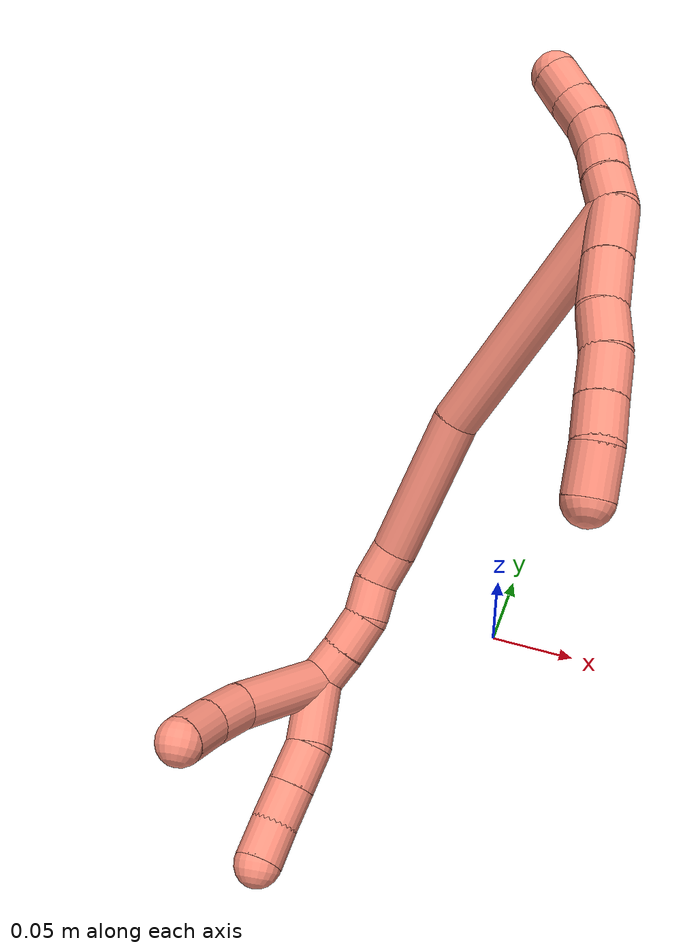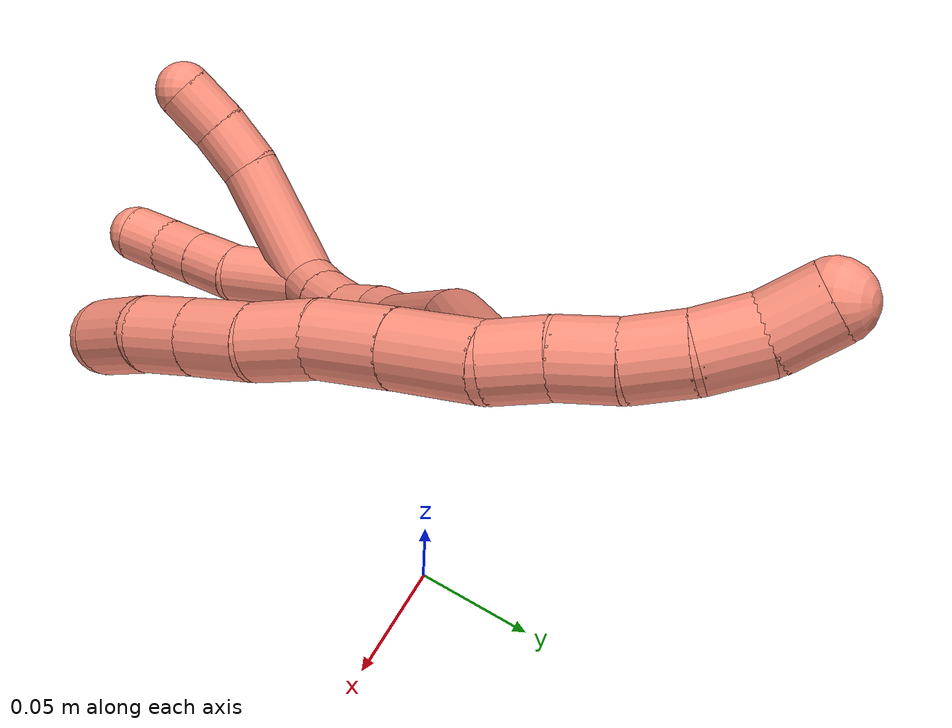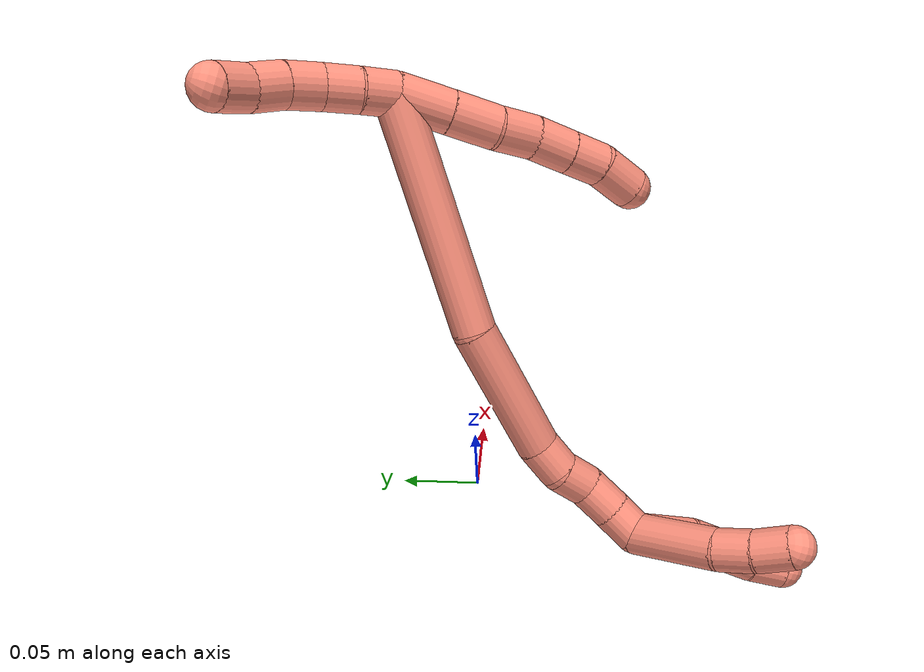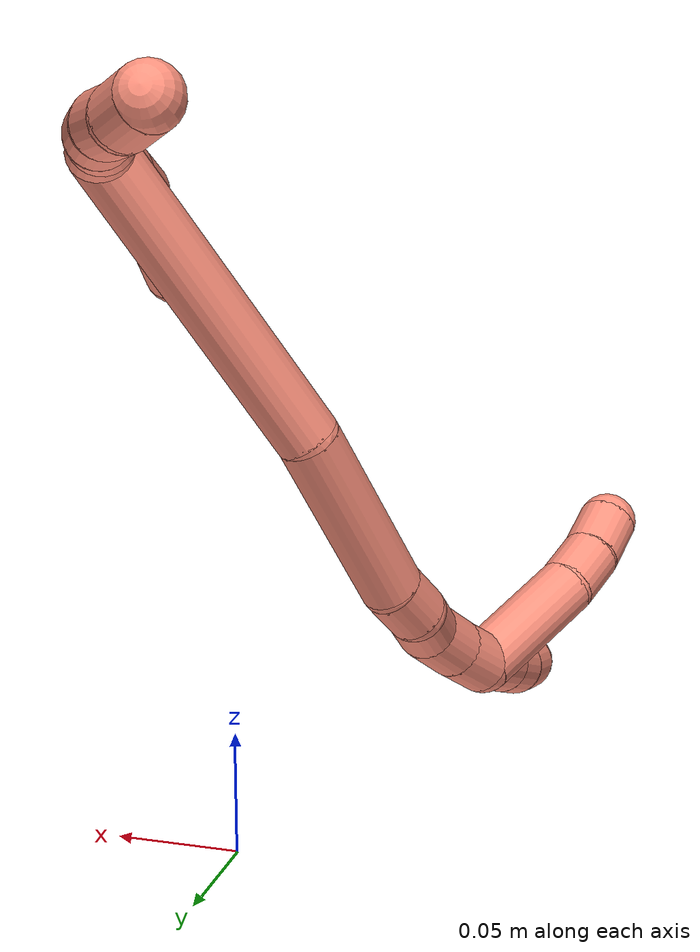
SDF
<sdf version="1.7">
 <world name="default">
  <model name="16">
   <static>0</static>
   <link name="16">
    <collision name="collision-cylinder-e_1_2_8">
     <pose>0.00036 -0.000911 -0.015291 3.08207 0.023467 0.750971</pose>
     <geometry><cylinder><radius>0.0125</radius><length>0.030644</length></cylinder></geometry>
     <surface>
      <friction><ode><mu>1.16</mu><mu2>1.16</mu2><slip1>0</slip1><slip2>0</slip2></ode></friction>
      <contact><ode><kp>1e+06</kp><kd>1</kd><max_vel>0</max_vel><min_depth>0.001</min_depth></ode></contact>
     </surface>
    </collision>
    <visual name="visual-cylinder-e_1_2_8">
     <pose>0.00036 -0.000911 -0.015291 3.08207 0.023467 0.750971</pose>
     <geometry><cylinder><radius>0.0125</radius><length>0.030644</length></cylinder></geometry>
     <material><ambient>1 0.576471 0.494118 1</ambient></material>
    </visual>
    <collision name="collision-cylinder-e_2_8_9">
     <pose>0.001087 -0.002383 -0.044352 3.10088 0.026711 1.16118</pose>
     <geometry><cylinder><radius>0.0125</radius><length>0.027574</length></cylinder></geometry>
     <surface>
      <friction><ode><mu>1.16</mu><mu2>1.16</mu2><slip1>0</slip1><slip2>0</slip2></ode></friction>
      <contact><ode><kp>1e+06</kp><kd>1</kd><max_vel>0</max_vel><min_depth>0.001</min_depth></ode></contact>
     </surface>
    </collision>
    <visual name="visual-cylinder-e_2_8_9">
     <pose>0.001087 -0.002383 -0.044352 3.10088 0.026711 1.16118</pose>
     <geometry><cylinder><radius>0.0125</radius><length>0.027574</length></cylinder></geometry>
     <material><ambient>1 0.576471 0.494118 1</ambient></material>
    </visual>
    <collision name="collision-cylinder-e_3_9_10">
     <pose>0.003206 -0.002041 -0.069483 -3.06229 0.152369 -2.18299</pose>
     <geometry><cylinder><radius>0.0125</radius><length>0.023061</length></cylinder></geometry>
     <surface>
      <friction><ode><mu>1.16</mu><mu2>1.16</mu2><slip1>0</slip1><slip2>0</slip2></ode></friction>
      <contact><ode><kp>1e+06</kp><kd>1</kd><max_vel>0</max_vel><min_depth>0.001</min_depth></ode></contact>
     </surface>
    </collision>
    <visual name="visual-cylinder-e_3_9_10">
     <pose>0.003206 -0.002041 -0.069483 -3.06229 0.152369 -2.18299</pose>
     <geometry><cylinder><radius>0.0125</radius><length>0.023061</length></cylinder></geometry>
     <material><ambient>1 0.576471 0.494118 1</ambient></material>
    </visual>
    <collision name="collision-cylinder-e_4_10_11">
     <pose>0.004773 -0.000907 -0.092382 -3.12149 -0.015791 1.33154</pose>
     <geometry><cylinder><radius>0.0125</radius><length>0.023082</length></cylinder></geometry>
     <surface>
      <friction><ode><mu>1.16</mu><mu2>1.16</mu2><slip1>0</slip1><slip2>0</slip2></ode></friction>
      <contact><ode><kp>1e+06</kp><kd>1</kd><max_vel>0</max_vel><min_depth>0.001</min_depth></ode></contact>
     </surface>
    </collision>
    <visual name="visual-cylinder-e_4_10_11">
     <pose>0.004773 -0.000907 -0.092382 -3.12149 -0.015791 1.33154</pose>
     <geometry><cylinder><radius>0.0125</radius><length>0.023082</length></cylinder></geometry>
     <material><ambient>1 0.576471 0.494118 1</ambient></material>
    </visual>
    <collision name="collision-cylinder-e_5_11_12">
     <pose>0.004547 -0.000346 -0.114613 -3.11088 -0.004122 0.266831</pose>
     <geometry><cylinder><radius>0.0125</radius><length>0.0214</length></cylinder></geometry>
     <surface>
      <friction><ode><mu>1.16</mu><mu2>1.16</mu2><slip1>0</slip1><slip2>0</slip2></ode></friction>
      <contact><ode><kp>1e+06</kp><kd>1</kd><max_vel>0</max_vel><min_depth>0.001</min_depth></ode></contact>
     </surface>
    </collision>
    <visual name="visual-cylinder-e_5_11_12">
     <pose>0.004547 -0.000346 -0.114613 -3.11088 -0.004122 0.266831</pose>
     <geometry><cylinder><radius>0.0125</radius><length>0.0214</length></cylinder></geometry>
     <material><ambient>1 0.576471 0.494118 1</ambient></material>
    </visual>
    <collision name="collision-cylinder-e_6_12_6">
     <pose>0.002182 0.002224 -0.136991 -2.95207 -0.192683 1.58746</pose>
     <geometry><cylinder><radius>0.0125</radius><length>0.02424</length></cylinder></geometry>
     <surface>
      <friction><ode><mu>1.16</mu><mu2>1.16</mu2><slip1>0</slip1><slip2>0</slip2></ode></friction>
      <contact><ode><kp>1e+06</kp><kd>1</kd><max_vel>0</max_vel><min_depth>0.001</min_depth></ode></contact>
     </surface>
    </collision>
    <visual name="visual-cylinder-e_6_12_6">
     <pose>0.002182 0.002224 -0.136991 -2.95207 -0.192683 1.58746</pose>
     <geometry><cylinder><radius>0.0125</radius><length>0.02424</length></cylinder></geometry>
     <material><ambient>1 0.576471 0.494118 1</ambient></material>
    </visual>
    <collision name="collision-cylinder-e_1_2_13">
     <pose>-0.002878 -0.000574 0.00956 0.060018 -0.291948 -0.008826</pose>
     <geometry><cylinder><radius>0.0125</radius><length>0.02</length></cylinder></geometry>
     <surface>
      <friction><ode><mu>1.16</mu><mu2>1.16</mu2><slip1>0</slip1><slip2>0</slip2></ode></friction>
      <contact><ode><kp>1e+06</kp><kd>1</kd><max_vel>0</max_vel><min_depth>0.001</min_depth></ode></contact>
     </surface>
    </collision>
    <visual name="visual-cylinder-e_1_2_13">
     <pose>-0.002878 -0.000574 0.00956 0.060018 -0.291948 -0.008826</pose>
     <geometry><cylinder><radius>0.0125</radius><length>0.02</length></cylinder></geometry>
     <material><ambient>1 0.576471 0.494118 1</ambient></material>
    </visual>
    <collision name="collision-cylinder-e_2_13_14">
     <pose>-0.00846 -0.000612 0.028732 -0.055779 -0.273744 0.007685</pose>
     <geometry><cylinder><radius>0.0125</radius><length>0.02</length></cylinder></geometry>
     <surface>
      <friction><ode><mu>1.16</mu><mu2>1.16</mu2><slip1>0</slip1><slip2>0</slip2></ode></friction>
      <contact><ode><kp>1e+06</kp><kd>1</kd><max_vel>0</max_vel><min_depth>0.001</min_depth></ode></contact>
     </surface>
    </collision>
    <visual name="visual-cylinder-e_2_13_14">
     <pose>-0.00846 -0.000612 0.028732 -0.055779 -0.273744 0.007685</pose>
     <geometry><cylinder><radius>0.0125</radius><length>0.02</length></cylinder></geometry>
     <material><ambient>1 0.576471 0.494118 1</ambient></material>
    </visual>
    <collision name="collision-cylinder-e_3_14_15">
     <pose>-0.014681 -0.000985 0.047661 0.097303 -0.35952 -0.017696</pose>
     <geometry><cylinder><radius>0.0125</radius><length>0.02</length></cylinder></geometry>
     <surface>
      <friction><ode><mu>1.16</mu><mu2>1.16</mu2><slip1>0</slip1><slip2>0</slip2></ode></friction>
      <contact><ode><kp>1e+06</kp><kd>1</kd><max_vel>0</max_vel><min_depth>0.001</min_depth></ode></contact>
     </surface>
    </collision>
    <visual name="visual-cylinder-e_3_14_15">
     <pose>-0.014681 -0.000985 0.047661 0.097303 -0.35952 -0.017696</pose>
     <geometry><cylinder><radius>0.0125</radius><length>0.02</length></cylinder></geometry>
     <material><ambient>1 0.576471 0.494118 1</ambient></material>
    </visual>
    <collision name="collision-cylinder-e_4_15_16">
     <pose>-0.023189 -0.003566 0.065481 0.194128 -0.522344 -0.052038</pose>
     <geometry><cylinder><radius>0.0125</radius><length>0.02</length></cylinder></geometry>
     <surface>
      <friction><ode><mu>1.16</mu><mu2>1.16</mu2><slip1>0</slip1><slip2>0</slip2></ode></friction>
      <contact><ode><kp>1e+06</kp><kd>1</kd><max_vel>0</max_vel><min_depth>0.001</min_depth></ode></contact>
     </surface>
    </collision>
    <visual name="visual-cylinder-e_4_15_16">
     <pose>-0.023189 -0.003566 0.065481 0.194128 -0.522344 -0.052038</pose>
     <geometry><cylinder><radius>0.0125</radius><length>0.02</length></cylinder></geometry>
     <material><ambient>1 0.576471 0.494118 1</ambient></material>
    </visual>
    <collision name="collision-cylinder-e_5_16_5">
     <pose>-0.03253 -0.009213 0.082063 0.457282 -0.450234 -0.10648</pose>
     <geometry><cylinder><radius>0.0125</radius><length>0.02</length></cylinder></geometry>
     <surface>
      <friction><ode><mu>1.16</mu><mu2>1.16</mu2><slip1>0</slip1><slip2>0</slip2></ode></friction>
      <contact><ode><kp>1e+06</kp><kd>1</kd><max_vel>0</max_vel><min_depth>0.001</min_depth></ode></contact>
     </surface>
    </collision>
    <visual name="visual-cylinder-e_5_16_5">
     <pose>-0.03253 -0.009213 0.082063 0.457282 -0.450234 -0.10648</pose>
     <geometry><cylinder><radius>0.0125</radius><length>0.02</length></cylinder></geometry>
     <material><ambient>1 0.576471 0.494118 1</ambient></material>
    </visual>
    <collision name="collision-cylinder-e_1_2_17">
     <pose>-0.05203 0.014289 -0.040593 -2.80314 -0.879744 2.44508</pose>
     <geometry><cylinder><radius>0.0125</radius><length>0.135042</length></cylinder></geometry>
     <surface>
      <friction><ode><mu>1.16</mu><mu2>1.16</mu2><slip1>0</slip1><slip2>0</slip2></ode></friction>
      <contact><ode><kp>1e+06</kp><kd>1</kd><max_vel>0</max_vel><min_depth>0.001</min_depth></ode></contact>
     </surface>
    </collision>
    <visual name="visual-cylinder-e_1_2_17">
     <pose>-0.05203 0.014289 -0.040593 -2.80314 -0.879744 2.44508</pose>
     <geometry><cylinder><radius>0.0125</radius><length>0.135042</length></cylinder></geometry>
     <material><ambient>1 0.576471 0.494118 1</ambient></material>
    </visual>
    <collision name="collision-cylinder-e_2_17_18">
     <pose>-0.128505 0.039327 -0.111808 -2.804 -0.645552 2.19913</pose>
     <geometry><cylinder><radius>0.0125</radius><length>0.081259</length></cylinder></geometry>
     <surface>
      <friction><ode><mu>1.16</mu><mu2>1.16</mu2><slip1>0</slip1><slip2>0</slip2></ode></friction>
      <contact><ode><kp>1e+06</kp><kd>1</kd><max_vel>0</max_vel><min_depth>0.001</min_depth></ode></contact>
     </surface>
    </collision>
    <visual name="visual-cylinder-e_2_17_18">
     <pose>-0.128505 0.039327 -0.111808 -2.804 -0.645552 2.19913</pose>
     <geometry><cylinder><radius>0.0125</radius><length>0.081259</length></cylinder></geometry>
     <material><ambient>1 0.576471 0.494118 1</ambient></material>
    </visual>
    <collision name="collision-cylinder-e_3_18_19">
     <pose>-0.158571 0.050703 -0.151235 -3.07044 -0.567079 2.89851</pose>
     <geometry><cylinder><radius>0.0125</radius><length>0.020933</length></cylinder></geometry>
     <surface>
      <friction><ode><mu>1.16</mu><mu2>1.16</mu2><slip1>0</slip1><slip2>0</slip2></ode></friction>
      <contact><ode><kp>1e+06</kp><kd>1</kd><max_vel>0</max_vel><min_depth>0.001</min_depth></ode></contact>
     </surface>
    </collision>
    <visual name="visual-cylinder-e_3_18_19">
     <pose>-0.158571 0.050703 -0.151235 -3.07044 -0.567079 2.89851</pose>
     <geometry><cylinder><radius>0.0125</radius><length>0.020933</length></cylinder></geometry>
     <material><ambient>1 0.576471 0.494118 1</ambient></material>
    </visual>
    <collision name="collision-cylinder-e_4_19_20">
     <pose>-0.16644 0.052257 -0.169846 -3.04746 -0.224273 2.34932</pose>
     <geometry><cylinder><radius>0.0125</radius><length>0.020203</length></cylinder></geometry>
     <surface>
      <friction><ode><mu>1.16</mu><mu2>1.16</mu2><slip1>0</slip1><slip2>0</slip2></ode></friction>
      <contact><ode><kp>1e+06</kp><kd>1</kd><max_vel>0</max_vel><min_depth>0.001</min_depth></ode></contact>
     </surface>
    </collision>
    <visual name="visual-cylinder-e_4_19_20">
     <pose>-0.16644 0.052257 -0.169846 -3.04746 -0.224273 2.34932</pose>
     <geometry><cylinder><radius>0.0125</radius><length>0.020203</length></cylinder></geometry>
     <material><ambient>1 0.576471 0.494118 1</ambient></material>
    </visual>
    <collision name="collision-cylinder-e_5_20_21">
     <pose>-0.174007 0.052197 -0.189213 3.03891 -0.505492 -2.7488</pose>
     <geometry><cylinder><radius>0.0125</radius><length>0.021972</length></cylinder></geometry>
     <surface>
      <friction><ode><mu>1.16</mu><mu2>1.16</mu2><slip1>0</slip1><slip2>0</slip2></ode></friction>
      <contact><ode><kp>1e+06</kp><kd>1</kd><max_vel>0</max_vel><min_depth>0.001</min_depth></ode></contact>
     </surface>
    </collision>
    <visual name="visual-cylinder-e_5_20_21">
     <pose>-0.174007 0.052197 -0.189213 3.03891 -0.505492 -2.7488</pose>
     <geometry><cylinder><radius>0.0125</radius><length>0.021972</length></cylinder></geometry>
     <material><ambient>1 0.576471 0.494118 1</ambient></material>
    </visual>
    <collision name="collision-cylinder-e_6_21_1">
     <pose>-0.184714 0.04972 -0.207419 2.97068 -0.55076 -2.55286</pose>
     <geometry><cylinder><radius>0.0125</radius><length>0.02059</length></cylinder></geometry>
     <surface>
      <friction><ode><mu>1.16</mu><mu2>1.16</mu2><slip1>0</slip1><slip2>0</slip2></ode></friction>
      <contact><ode><kp>1e+06</kp><kd>1</kd><max_vel>0</max_vel><min_depth>0.001</min_depth></ode></contact>
     </surface>
    </collision>
    <visual name="visual-cylinder-e_6_21_1">
     <pose>-0.184714 0.04972 -0.207419 2.97068 -0.55076 -2.55286</pose>
     <geometry><cylinder><radius>0.0125</radius><length>0.02059</length></cylinder></geometry>
     <material><ambient>1 0.576471 0.494118 1</ambient></material>
    </visual>
    <collision name="collision-cylinder-e_1_1_22">
     <pose>-0.191883 0.023643 -0.229217 2.06206 -0.063785 -0.106402</pose>
     <geometry><cylinder><radius>0.0125</radius><length>0.055878</length></cylinder></geometry>
     <surface>
      <friction><ode><mu>1.16</mu><mu2>1.16</mu2><slip1>0</slip1><slip2>0</slip2></ode></friction>
      <contact><ode><kp>1e+06</kp><kd>1</kd><max_vel>0</max_vel><min_depth>0.001</min_depth></ode></contact>
     </surface>
    </collision>
    <visual name="visual-cylinder-e_1_1_22">
     <pose>-0.191883 0.023643 -0.229217 2.06206 -0.063785 -0.106402</pose>
     <geometry><cylinder><radius>0.0125</radius><length>0.055878</length></cylinder></geometry>
     <material><ambient>1 0.576471 0.494118 1</ambient></material>
    </visual>
    <collision name="collision-cylinder-e_2_22_23">
     <pose>-0.192712 -0.010067 -0.248563 2.16702 0.086082 0.162192</pose>
     <geometry><cylinder><radius>0.0125</radius><length>0.022139</length></cylinder></geometry>
     <surface>
      <friction><ode><mu>1.16</mu><mu2>1.16</mu2><slip1>0</slip1><slip2>0</slip2></ode></friction>
      <contact><ode><kp>1e+06</kp><kd>1</kd><max_vel>0</max_vel><min_depth>0.001</min_depth></ode></contact>
     </surface>
    </collision>
    <visual name="visual-cylinder-e_2_22_23">
     <pose>-0.192712 -0.010067 -0.248563 2.16702 0.086082 0.162192</pose>
     <geometry><cylinder><radius>0.0125</radius><length>0.022139</length></cylinder></geometry>
     <material><ambient>1 0.576471 0.494118 1</ambient></material>
    </visual>
    <collision name="collision-cylinder-e_3_23_4">
     <pose>-0.189257 -0.027919 -0.260952 2.18825 0.229817 0.439789</pose>
     <geometry><cylinder><radius>0.0125</radius><length>0.021984</length></cylinder></geometry>
     <surface>
      <friction><ode><mu>1.16</mu><mu2>1.16</mu2><slip1>0</slip1><slip2>0</slip2></ode></friction>
      <contact><ode><kp>1e+06</kp><kd>1</kd><max_vel>0</max_vel><min_depth>0.001</min_depth></ode></contact>
     </surface>
    </collision>
    <visual name="visual-cylinder-e_3_23_4">
     <pose>-0.189257 -0.027919 -0.260952 2.18825 0.229817 0.439789</pose>
     <geometry><cylinder><radius>0.0125</radius><length>0.021984</length></cylinder></geometry>
     <material><ambient>1 0.576471 0.494118 1</ambient></material>
    </visual>
    <collision name="collision-cylinder-e_1_1_24">
     <pose>-0.187857 0.04669 -0.234457 3.0582 0.121023 1.93545</pose>
     <geometry><cylinder><radius>0.0125</radius><length>0.037185</length></cylinder></geometry>
     <surface>
      <friction><ode><mu>1.16</mu><mu2>1.16</mu2><slip1>0</slip1><slip2>0</slip2></ode></friction>
      <contact><ode><kp>1e+06</kp><kd>1</kd><max_vel>0</max_vel><min_depth>0.001</min_depth></ode></contact>
     </surface>
    </collision>
    <visual name="visual-cylinder-e_1_1_24">
     <pose>-0.187857 0.04669 -0.234457 3.0582 0.121023 1.93545</pose>
     <geometry><cylinder><radius>0.0125</radius><length>0.037185</length></cylinder></geometry>
     <material><ambient>1 0.576471 0.494118 1</ambient></material>
    </visual>
    <collision name="collision-cylinder-e_2_24_25">
     <pose>-0.187063 0.04309 -0.263483 2.95002 -0.133049 -1.21257</pose>
     <geometry><cylinder><radius>0.0125</radius><length>0.021856</length></cylinder></geometry>
     <surface>
      <friction><ode><mu>1.16</mu><mu2>1.16</mu2><slip1>0</slip1><slip2>0</slip2></ode></friction>
      <contact><ode><kp>1e+06</kp><kd>1</kd><max_vel>0</max_vel><min_depth>0.001</min_depth></ode></contact>
     </surface>
    </collision>
    <visual name="visual-cylinder-e_2_24_25">
     <pose>-0.187063 0.04309 -0.263483 2.95002 -0.133049 -1.21257</pose>
     <geometry><cylinder><radius>0.0125</radius><length>0.021856</length></cylinder></geometry>
     <material><ambient>1 0.576471 0.494118 1</ambient></material>
    </visual>
    <collision name="collision-cylinder-e_3_25_26">
     <pose>-0.189879 0.039034 -0.284185 2.94607 -0.132412 -1.18895</pose>
     <geometry><cylinder><radius>0.0125</radius><length>0.02071</length></cylinder></geometry>
     <surface>
      <friction><ode><mu>1.16</mu><mu2>1.16</mu2><slip1>0</slip1><slip2>0</slip2></ode></friction>
      <contact><ode><kp>1e+06</kp><kd>1</kd><max_vel>0</max_vel><min_depth>0.001</min_depth></ode></contact>
     </surface>
    </collision>
    <visual name="visual-cylinder-e_3_25_26">
     <pose>-0.189879 0.039034 -0.284185 2.94607 -0.132412 -1.18895</pose>
     <geometry><cylinder><radius>0.0125</radius><length>0.02071</length></cylinder></geometry>
     <material><ambient>1 0.576471 0.494118 1</ambient></material>
    </visual>
    <collision name="collision-cylinder-e_4_26_3">
     <pose>-0.191247 0.034306 -0.304002 2.86823 -8.4e-05 -0.000611</pose>
     <geometry><cylinder><radius>0.0125</radius><length>0.020249</length></cylinder></geometry>
     <surface>
      <friction><ode><mu>1.16</mu><mu2>1.16</mu2><slip1>0</slip1><slip2>0</slip2></ode></friction>
      <contact><ode><kp>1e+06</kp><kd>1</kd><max_vel>0</max_vel><min_depth>0.001</min_depth></ode></contact>
     </surface>
    </collision>
    <visual name="visual-cylinder-e_4_26_3">
     <pose>-0.191247 0.034306 -0.304002 2.86823 -8.4e-05 -0.000611</pose>
     <geometry><cylinder><radius>0.0125</radius><length>0.020249</length></cylinder></geometry>
     <material><ambient>1 0.576471 0.494118 1</ambient></material>
    </visual>
    <collision name="collision-sphere-3">
     <pose>-0.191248 0.031573 -0.31375 0 -0 0</pose>
     <geometry><sphere><radius>0.0125</radius></sphere></geometry>
     <surface>
      <friction><ode><mu>1.16</mu><mu2>1.16</mu2><slip1>0</slip1><slip2>0</slip2></ode></friction>
      <contact><ode><kp>1e+06</kp><kd>1</kd><max_vel>0</max_vel><min_depth>0.001</min_depth></ode></contact>
     </surface>
    </collision>
    <visual name="visual-sphere-3">
     <pose>-0.191248 0.031573 -0.31375 0 -0 0</pose>
     <geometry><sphere><radius>0.0125</radius></sphere></geometry>
     <material><ambient>1 0.576471 0.494118 1</ambient></material>
    </visual>
    <collision name="collision-sphere-26">
     <pose>-0.191246 0.03704 -0.294254 0 -0 0</pose>
     <geometry><sphere><radius>0.0125</radius></sphere></geometry>
     <surface>
      <friction><ode><mu>1.16</mu><mu2>1.16</mu2><slip1>0</slip1><slip2>0</slip2></ode></friction>
      <contact><ode><kp>1e+06</kp><kd>1</kd><max_vel>0</max_vel><min_depth>0.001</min_depth></ode></contact>
     </surface>
    </collision>
    <visual name="visual-sphere-26">
     <pose>-0.191246 0.03704 -0.294254 0 -0 0</pose>
     <geometry><sphere><radius>0.0125</radius></sphere></geometry>
     <material><ambient>1 0.576471 0.494118 1</ambient></material>
    </visual>
    <collision name="collision-sphere-25">
     <pose>-0.188512 0.041028 -0.274116 0 -0 0</pose>
     <geometry><sphere><radius>0.0125</radius></sphere></geometry>
     <surface>
      <friction><ode><mu>1.16</mu><mu2>1.16</mu2><slip1>0</slip1><slip2>0</slip2></ode></friction>
      <contact><ode><kp>1e+06</kp><kd>1</kd><max_vel>0</max_vel><min_depth>0.001</min_depth></ode></contact>
     </surface>
    </collision>
    <visual name="visual-sphere-25">
     <pose>-0.188512 0.041028 -0.274116 0 -0 0</pose>
     <geometry><sphere><radius>0.0125</radius></sphere></geometry>
     <material><ambient>1 0.576471 0.494118 1</ambient></material>
    </visual>
    <collision name="collision-sphere-24">
     <pose>-0.185613 0.045153 -0.252849 0 -0 0</pose>
     <geometry><sphere><radius>0.0125</radius></sphere></geometry>
     <surface>
      <friction><ode><mu>1.16</mu><mu2>1.16</mu2><slip1>0</slip1><slip2>0</slip2></ode></friction>
      <contact><ode><kp>1e+06</kp><kd>1</kd><max_vel>0</max_vel><min_depth>0.001</min_depth></ode></contact>
     </surface>
    </collision>
    <visual name="visual-sphere-24">
     <pose>-0.185613 0.045153 -0.252849 0 -0 0</pose>
     <geometry><sphere><radius>0.0125</radius></sphere></geometry>
     <material><ambient>1 0.576471 0.494118 1</ambient></material>
    </visual>
    <collision name="collision-sphere-4">
     <pose>-0.186753 -0.036646 -0.267149 0 -0 0</pose>
     <geometry><sphere><radius>0.0125</radius></sphere></geometry>
     <surface>
      <friction><ode><mu>1.16</mu><mu2>1.16</mu2><slip1>0</slip1><slip2>0</slip2></ode></friction>
      <contact><ode><kp>1e+06</kp><kd>1</kd><max_vel>0</max_vel><min_depth>0.001</min_depth></ode></contact>
     </surface>
    </collision>
    <visual name="visual-sphere-4">
     <pose>-0.186753 -0.036646 -0.267149 0 -0 0</pose>
     <geometry><sphere><radius>0.0125</radius></sphere></geometry>
     <material><ambient>1 0.576471 0.494118 1</ambient></material>
    </visual>
    <collision name="collision-sphere-23">
     <pose>-0.19176 -0.019193 -0.254756 0 -0 0</pose>
     <geometry><sphere><radius>0.0125</radius></sphere></geometry>
     <surface>
      <friction><ode><mu>1.16</mu><mu2>1.16</mu2><slip1>0</slip1><slip2>0</slip2></ode></friction>
      <contact><ode><kp>1e+06</kp><kd>1</kd><max_vel>0</max_vel><min_depth>0.001</min_depth></ode></contact>
     </surface>
    </collision>
    <visual name="visual-sphere-23">
     <pose>-0.19176 -0.019193 -0.254756 0 -0 0</pose>
     <geometry><sphere><radius>0.0125</radius></sphere></geometry>
     <material><ambient>1 0.576471 0.494118 1</ambient></material>
    </visual>
    <collision name="collision-sphere-22">
     <pose>-0.193664 -0.000942 -0.24237 0 -0 0</pose>
     <geometry><sphere><radius>0.0125</radius></sphere></geometry>
     <surface>
      <friction><ode><mu>1.16</mu><mu2>1.16</mu2><slip1>0</slip1><slip2>0</slip2></ode></friction>
      <contact><ode><kp>1e+06</kp><kd>1</kd><max_vel>0</max_vel><min_depth>0.001</min_depth></ode></contact>
     </surface>
    </collision>
    <visual name="visual-sphere-22">
     <pose>-0.193664 -0.000942 -0.24237 0 -0 0</pose>
     <geometry><sphere><radius>0.0125</radius></sphere></geometry>
     <material><ambient>1 0.576471 0.494118 1</ambient></material>
    </visual>
    <collision name="collision-sphere-1">
     <pose>-0.190102 0.048228 -0.216064 0 -0 0</pose>
     <geometry><sphere><radius>0.0125</radius></sphere></geometry>
     <surface>
      <friction><ode><mu>1.16</mu><mu2>1.16</mu2><slip1>0</slip1><slip2>0</slip2></ode></friction>
      <contact><ode><kp>1e+06</kp><kd>1</kd><max_vel>0</max_vel><min_depth>0.001</min_depth></ode></contact>
     </surface>
    </collision>
    <visual name="visual-sphere-1">
     <pose>-0.190102 0.048228 -0.216064 0 -0 0</pose>
     <geometry><sphere><radius>0.0125</radius></sphere></geometry>
     <material><ambient>1 0.576471 0.494118 1</ambient></material>
    </visual>
    <collision name="collision-sphere-21">
     <pose>-0.179327 0.051212 -0.198774 0 -0 0</pose>
     <geometry><sphere><radius>0.0125</radius></sphere></geometry>
     <surface>
      <friction><ode><mu>1.16</mu><mu2>1.16</mu2><slip1>0</slip1><slip2>0</slip2></ode></friction>
      <contact><ode><kp>1e+06</kp><kd>1</kd><max_vel>0</max_vel><min_depth>0.001</min_depth></ode></contact>
     </surface>
    </collision>
    <visual name="visual-sphere-21">
     <pose>-0.179327 0.051212 -0.198774 0 -0 0</pose>
     <geometry><sphere><radius>0.0125</radius></sphere></geometry>
     <material><ambient>1 0.576471 0.494118 1</ambient></material>
    </visual>
    <collision name="collision-sphere-12">
     <pose>0.004503 -1.7e-05 -0.125308 0 -0 0</pose>
     <geometry><sphere><radius>0.0125</radius></sphere></geometry>
     <surface>
      <friction><ode><mu>1.16</mu><mu2>1.16</mu2><slip1>0</slip1><slip2>0</slip2></ode></friction>
      <contact><ode><kp>1e+06</kp><kd>1</kd><max_vel>0</max_vel><min_depth>0.001</min_depth></ode></contact>
     </surface>
    </collision>
    <visual name="visual-sphere-12">
     <pose>0.004503 -1.7e-05 -0.125308 0 -0 0</pose>
     <geometry><sphere><radius>0.0125</radius></sphere></geometry>
     <material><ambient>1 0.576471 0.494118 1</ambient></material>
    </visual>
    <collision name="collision-sphere-11">
     <pose>0.004591 -0.000675 -0.103919 0 -0 0</pose>
     <geometry><sphere><radius>0.0125</radius></sphere></geometry>
     <surface>
      <friction><ode><mu>1.16</mu><mu2>1.16</mu2><slip1>0</slip1><slip2>0</slip2></ode></friction>
      <contact><ode><kp>1e+06</kp><kd>1</kd><max_vel>0</max_vel><min_depth>0.001</min_depth></ode></contact>
     </surface>
    </collision>
    <visual name="visual-sphere-11">
     <pose>0.004591 -0.000675 -0.103919 0 -0 0</pose>
     <geometry><sphere><radius>0.0125</radius></sphere></geometry>
     <material><ambient>1 0.576471 0.494118 1</ambient></material>
    </visual>
    <collision name="collision-sphere-10">
     <pose>0.004956 -0.001139 -0.080845 0 -0 0</pose>
     <geometry><sphere><radius>0.0125</radius></sphere></geometry>
     <surface>
      <friction><ode><mu>1.16</mu><mu2>1.16</mu2><slip1>0</slip1><slip2>0</slip2></ode></friction>
      <contact><ode><kp>1e+06</kp><kd>1</kd><max_vel>0</max_vel><min_depth>0.001</min_depth></ode></contact>
     </surface>
    </collision>
    <visual name="visual-sphere-10">
     <pose>0.004956 -0.001139 -0.080845 0 -0 0</pose>
     <geometry><sphere><radius>0.0125</radius></sphere></geometry>
     <material><ambient>1 0.576471 0.494118 1</ambient></material>
    </visual>
    <collision name="collision-sphere-9">
     <pose>0.001456 -0.002944 -0.058122 0 -0 0</pose>
     <geometry><sphere><radius>0.0125</radius></sphere></geometry>
     <surface>
      <friction><ode><mu>1.16</mu><mu2>1.16</mu2><slip1>0</slip1><slip2>0</slip2></ode></friction>
      <contact><ode><kp>1e+06</kp><kd>1</kd><max_vel>0</max_vel><min_depth>0.001</min_depth></ode></contact>
     </surface>
    </collision>
    <visual name="visual-sphere-9">
     <pose>0.001456 -0.002944 -0.058122 0 -0 0</pose>
     <geometry><sphere><radius>0.0125</radius></sphere></geometry>
     <material><ambient>1 0.576471 0.494118 1</ambient></material>
    </visual>
    <collision name="collision-sphere-2">
     <geometry><sphere><radius>0.0125</radius></sphere></geometry>
     <surface>
      <friction><ode><mu>1.16</mu><mu2>1.16</mu2><slip1>0</slip1><slip2>0</slip2></ode></friction>
      <contact><ode><kp>1e+06</kp><kd>1</kd><max_vel>0</max_vel><min_depth>0.001</min_depth></ode></contact>
     </surface>
    </collision>
    <visual name="visual-sphere-2">
     <geometry><sphere><radius>0.0125</radius></sphere></geometry>
     <material><ambient>1 0.576471 0.494118 1</ambient></material>
    </visual>
    <collision name="collision-sphere-19">
     <pose>-0.164194 0.051331 -0.160041 0 -0 0</pose>
     <geometry><sphere><radius>0.0125</radius></sphere></geometry>
     <surface>
      <friction><ode><mu>1.16</mu><mu2>1.16</mu2><slip1>0</slip1><slip2>0</slip2></ode></friction>
      <contact><ode><kp>1e+06</kp><kd>1</kd><max_vel>0</max_vel><min_depth>0.001</min_depth></ode></contact>
     </surface>
    </collision>
    <visual name="visual-sphere-19">
     <pose>-0.164194 0.051331 -0.160041 0 -0 0</pose>
     <geometry><sphere><radius>0.0125</radius></sphere></geometry>
     <material><ambient>1 0.576471 0.494118 1</ambient></material>
    </visual>
    <collision name="collision-sphere-8">
     <pose>0.000719 -0.001822 -0.030581 0 -0 0</pose>
     <geometry><sphere><radius>0.0125</radius></sphere></geometry>
     <surface>
      <friction><ode><mu>1.16</mu><mu2>1.16</mu2><slip1>0</slip1><slip2>0</slip2></ode></friction>
      <contact><ode><kp>1e+06</kp><kd>1</kd><max_vel>0</max_vel><min_depth>0.001</min_depth></ode></contact>
     </surface>
    </collision>
    <visual name="visual-sphere-8">
     <pose>0.000719 -0.001822 -0.030581 0 -0 0</pose>
     <geometry><sphere><radius>0.0125</radius></sphere></geometry>
     <material><ambient>1 0.576471 0.494118 1</ambient></material>
    </visual>
    <collision name="collision-sphere-6">
     <pose>-0.000139 0.004465 -0.148673 0 -0 0</pose>
     <geometry><sphere><radius>0.0125</radius></sphere></geometry>
     <surface>
      <friction><ode><mu>1.16</mu><mu2>1.16</mu2><slip1>0</slip1><slip2>0</slip2></ode></friction>
      <contact><ode><kp>1e+06</kp><kd>1</kd><max_vel>0</max_vel><min_depth>0.001</min_depth></ode></contact>
     </surface>
    </collision>
    <visual name="visual-sphere-6">
     <pose>-0.000139 0.004465 -0.148673 0 -0 0</pose>
     <geometry><sphere><radius>0.0125</radius></sphere></geometry>
     <material><ambient>1 0.576471 0.494118 1</ambient></material>
    </visual>
    <collision name="collision-sphere-13">
     <pose>-0.005756 -0.001149 0.019119 0 -0 0</pose>
     <geometry><sphere><radius>0.0125</radius></sphere></geometry>
     <surface>
      <friction><ode><mu>1.16</mu><mu2>1.16</mu2><slip1>0</slip1><slip2>0</slip2></ode></friction>
      <contact><ode><kp>1e+06</kp><kd>1</kd><max_vel>0</max_vel><min_depth>0.001</min_depth></ode></contact>
     </surface>
    </collision>
    <visual name="visual-sphere-13">
     <pose>-0.005756 -0.001149 0.019119 0 -0 0</pose>
     <geometry><sphere><radius>0.0125</radius></sphere></geometry>
     <material><ambient>1 0.576471 0.494118 1</ambient></material>
    </visual>
    <collision name="collision-sphere-14">
     <pose>-0.011163 -7.5e-05 0.038345 0 -0 0</pose>
     <geometry><sphere><radius>0.0125</radius></sphere></geometry>
     <surface>
      <friction><ode><mu>1.16</mu><mu2>1.16</mu2><slip1>0</slip1><slip2>0</slip2></ode></friction>
      <contact><ode><kp>1e+06</kp><kd>1</kd><max_vel>0</max_vel><min_depth>0.001</min_depth></ode></contact>
     </surface>
    </collision>
    <visual name="visual-sphere-14">
     <pose>-0.011163 -7.5e-05 0.038345 0 -0 0</pose>
     <geometry><sphere><radius>0.0125</radius></sphere></geometry>
     <material><ambient>1 0.576471 0.494118 1</ambient></material>
    </visual>
    <collision name="collision-sphere-15">
     <pose>-0.0182 -0.001894 0.056977 0 -0 0</pose>
     <geometry><sphere><radius>0.0125</radius></sphere></geometry>
     <surface>
      <friction><ode><mu>1.16</mu><mu2>1.16</mu2><slip1>0</slip1><slip2>0</slip2></ode></friction>
      <contact><ode><kp>1e+06</kp><kd>1</kd><max_vel>0</max_vel><min_depth>0.001</min_depth></ode></contact>
     </surface>
    </collision>
    <visual name="visual-sphere-15">
     <pose>-0.0182 -0.001894 0.056977 0 -0 0</pose>
     <geometry><sphere><radius>0.0125</radius></sphere></geometry>
     <material><ambient>1 0.576471 0.494118 1</ambient></material>
    </visual>
    <collision name="collision-sphere-16">
     <pose>-0.028178 -0.005238 0.073985 0 -0 0</pose>
     <geometry><sphere><radius>0.0125</radius></sphere></geometry>
     <surface>
      <friction><ode><mu>1.16</mu><mu2>1.16</mu2><slip1>0</slip1><slip2>0</slip2></ode></friction>
      <contact><ode><kp>1e+06</kp><kd>1</kd><max_vel>0</max_vel><min_depth>0.001</min_depth></ode></contact>
     </surface>
    </collision>
    <visual name="visual-sphere-16">
     <pose>-0.028178 -0.005238 0.073985 0 -0 0</pose>
     <geometry><sphere><radius>0.0125</radius></sphere></geometry>
     <material><ambient>1 0.576471 0.494118 1</ambient></material>
    </visual>
    <collision name="collision-sphere-5">
     <pose>-0.036881 -0.013188 0.090142 0 -0 0</pose>
     <geometry><sphere><radius>0.0125</radius></sphere></geometry>
     <surface>
      <friction><ode><mu>1.16</mu><mu2>1.16</mu2><slip1>0</slip1><slip2>0</slip2></ode></friction>
      <contact><ode><kp>1e+06</kp><kd>1</kd><max_vel>0</max_vel><min_depth>0.001</min_depth></ode></contact>
     </surface>
    </collision>
    <visual name="visual-sphere-5">
     <pose>-0.036881 -0.013188 0.090142 0 -0 0</pose>
     <geometry><sphere><radius>0.0125</radius></sphere></geometry>
     <material><ambient>1 0.576471 0.494118 1</ambient></material>
    </visual>
    <collision name="collision-sphere-17">
     <pose>-0.10406 0.028577 -0.081186 0 -0 0</pose>
     <geometry><sphere><radius>0.0125</radius></sphere></geometry>
     <surface>
      <friction><ode><mu>1.16</mu><mu2>1.16</mu2><slip1>0</slip1><slip2>0</slip2></ode></friction>
      <contact><ode><kp>1e+06</kp><kd>1</kd><max_vel>0</max_vel><min_depth>0.001</min_depth></ode></contact>
     </surface>
    </collision>
    <visual name="visual-sphere-17">
     <pose>-0.10406 0.028577 -0.081186 0 -0 0</pose>
     <geometry><sphere><radius>0.0125</radius></sphere></geometry>
     <material><ambient>1 0.576471 0.494118 1</ambient></material>
    </visual>
    <collision name="collision-sphere-18">
     <pose>-0.152949 0.050076 -0.14243 0 -0 0</pose>
     <geometry><sphere><radius>0.0125</radius></sphere></geometry>
     <surface>
      <friction><ode><mu>1.16</mu><mu2>1.16</mu2><slip1>0</slip1><slip2>0</slip2></ode></friction>
      <contact><ode><kp>1e+06</kp><kd>1</kd><max_vel>0</max_vel><min_depth>0.001</min_depth></ode></contact>
     </surface>
    </collision>
    <visual name="visual-sphere-18">
     <pose>-0.152949 0.050076 -0.14243 0 -0 0</pose>
     <geometry><sphere><radius>0.0125</radius></sphere></geometry>
     <material><ambient>1 0.576471 0.494118 1</ambient></material>
    </visual>
    <collision name="collision-sphere-20">
     <pose>-0.168687 0.053182 -0.179651 0 -0 0</pose>
     <geometry><sphere><radius>0.0125</radius></sphere></geometry>
     <surface>
      <friction><ode><mu>1.16</mu><mu2>1.16</mu2><slip1>0</slip1><slip2>0</slip2></ode></friction>
      <contact><ode><kp>1e+06</kp><kd>1</kd><max_vel>0</max_vel><min_depth>0.001</min_depth></ode></contact>
     </surface>
    </collision>
    <visual name="visual-sphere-20">
     <pose>-0.168687 0.053182 -0.179651 0 -0 0</pose>
     <geometry><sphere><radius>0.0125</radius></sphere></geometry>
     <material><ambient>1 0.576471 0.494118 1</ambient></material>
    </visual>
    <inertial>
     <pose>-0.094752 0.018219 -0.115584 0 -0 0</pose>
     <mass>0.75</mass>
     <inertia><ixx>1e-05</ixx><ixy>0</ixy><ixz>0</ixz><iyy>0.000341</iyy><iyz>0</iyz><izz>0.000126</izz></inertia>
    </inertial>
   </link>
   <pose>0.033546 0.036522 0.282432 -1.0001 -0.542668 -0.171486</pose>
  </model>
 </world>
</sdf>
